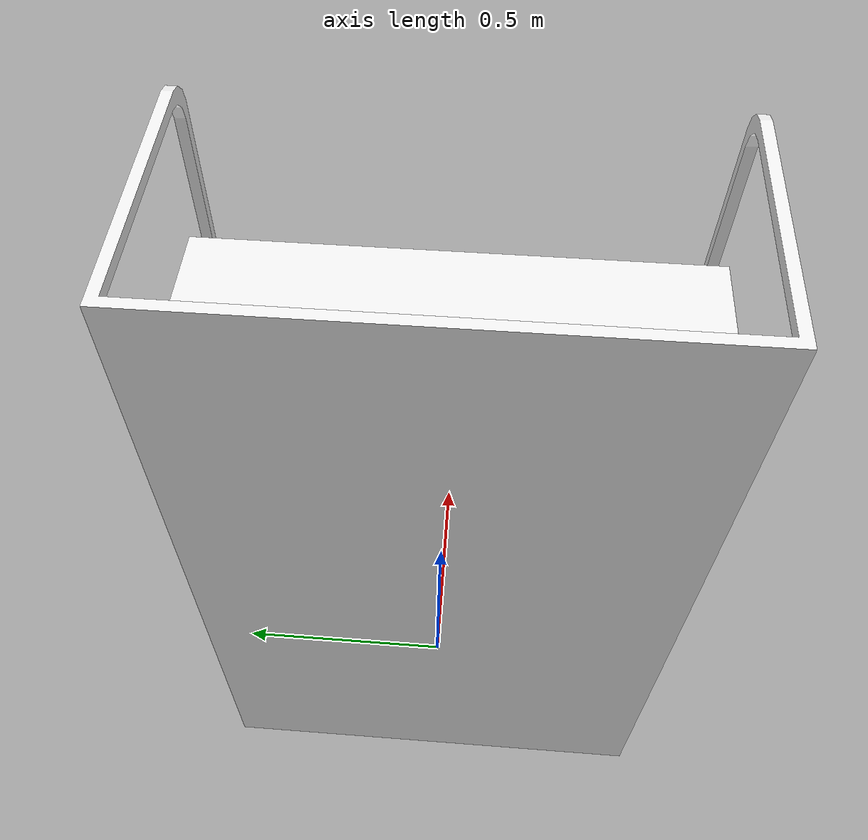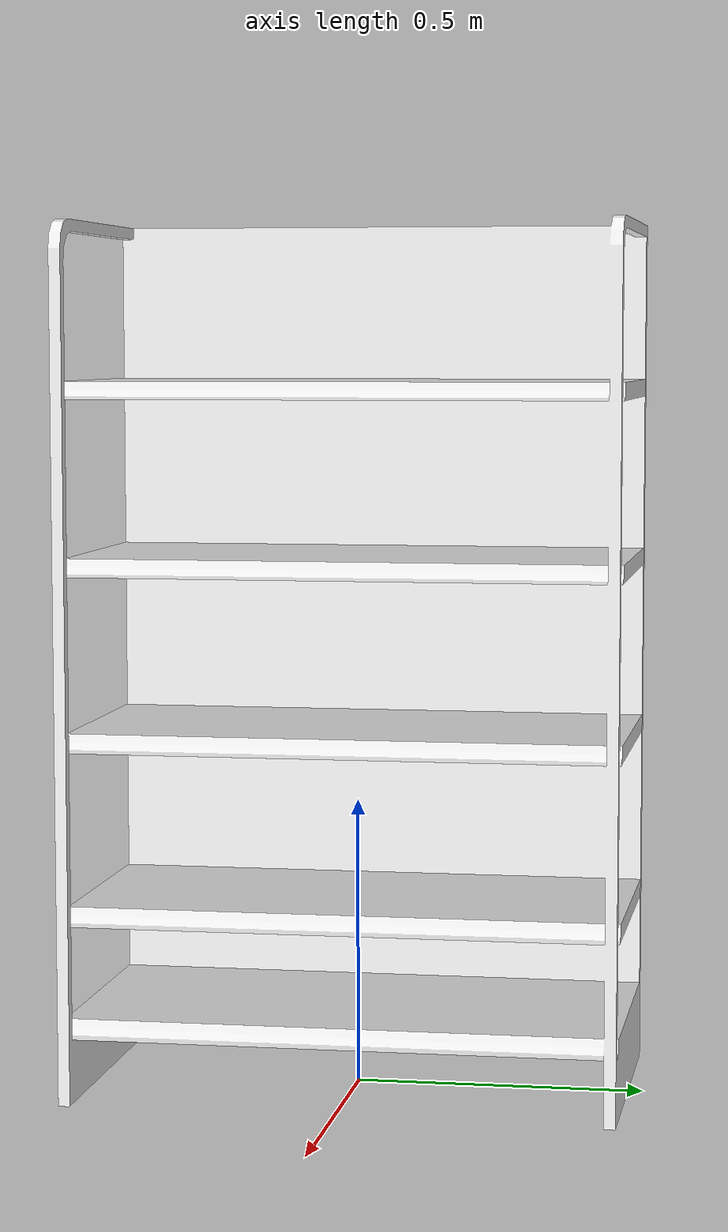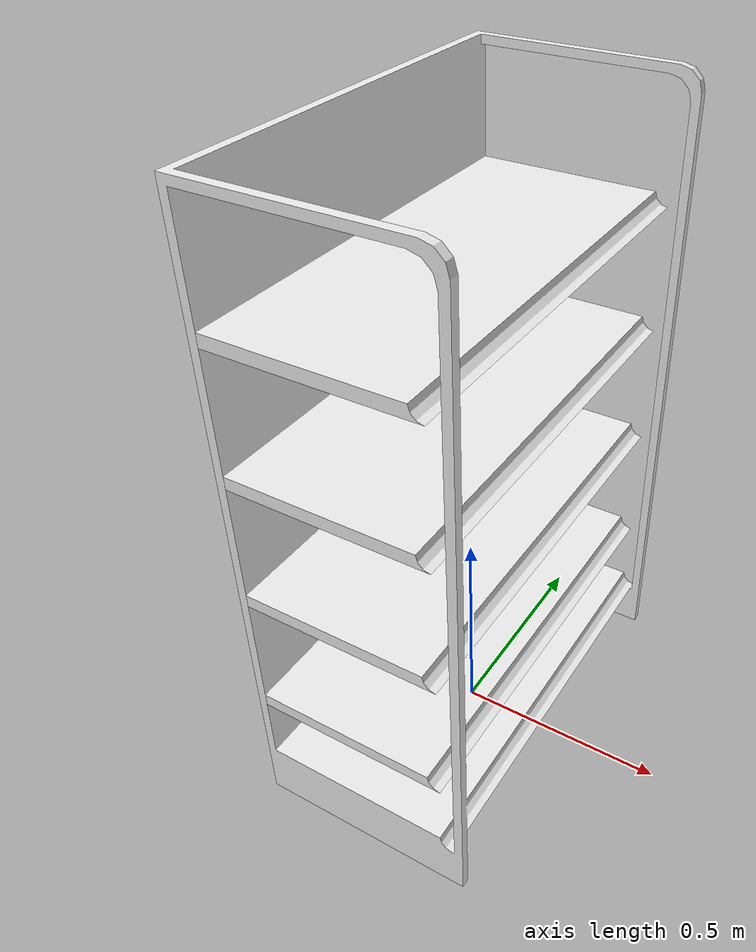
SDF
<?xml version='1.0'?>
<sdf version="1.6">
  <model name="shelf3">
    <static>true</static>
    <link name="shelving_uprights">
      <pose>0 0 0 0 0 0</pose>
      <inertial>
        <pose>-0.156 0 0.545 0 0 0</pose>
        <mass>12.1</mass>
        <inertia>
          <ixx>3.7396</ixx>
          <ixy>0.0</ixy>
          <ixz>0.3568</ixz>
          <iyy>2.9636</iyy>
          <iyz>0.0</iyz>
          <izz>1.3356</izz>
        </inertia>
      </inertial>
      <collision name="collision">
        <geometry>
          <mesh>
            <uri>model://shelf/shelving_uprights.dae</uri>
          </mesh>
        </geometry>
      </collision>
      <visual name="visual">
        <geometry>
          <mesh>
            <uri>model://shelf/shelving_uprights.dae</uri>
          </mesh>
        </geometry>
      </visual>
    </link>

    <link name="shelving_brackets1">
      <pose>0 0 0.3 0 0 0</pose>
      <inertial>
        <pose>-0.027 0 0.015 0 0 0</pose>
        <mass>3.2</mass>
        <inertia>
          <ixx>0.247</ixx>
          <ixy>0.0</ixy>
          <ixz>0.0001</ixz>
          <iyy>0.05</iyy>
          <iyz>0.0</iyz>
          <izz>0.2966</izz>
        </inertia>
      </inertial>
      <collision name="collision">
        <geometry>
          <mesh>
            <uri>model://shelf/shelving_brackets.dae</uri>
          </mesh>
        </geometry>
      </collision>
      <visual name="visual">
        <geometry>
          <mesh>
            <uri>model://shelf/shelving_brackets.dae</uri>
          </mesh>
        </geometry>
      </visual>
    </link>

    <link name="shelving_brackets2">
      <pose>0 0 0.6 0 0 0</pose>
      <inertial>
        <pose>-0.027 0 0.015 0 0 0</pose>
        <mass>3.2</mass>
        <inertia>
          <ixx>0.247</ixx>
          <ixy>0.0</ixy>
          <ixz>0.0001</ixz>
          <iyy>0.05</iyy>
          <iyz>0.0</iyz>
          <izz>0.2966</izz>
        </inertia>
      </inertial>
      <collision name="collision">
        <geometry>
          <mesh>
            <uri>model://shelf/shelving_brackets.dae</uri>
          </mesh>
        </geometry>
      </collision>
      <visual name="visual">
        <geometry>
          <mesh>
            <uri>model://shelf/shelving_brackets.dae</uri>
          </mesh>
        </geometry>
      </visual>
    </link>

    <link name="shelving_brackets3">
      <pose>0 0 0.9 0 0 0</pose>
      <inertial>
        <pose>-0.027 0 0.015 0 0 0</pose>
        <mass>3.2</mass>
        <inertia>
          <ixx>0.247</ixx>
          <ixy>0.0</ixy>
          <ixz>0.0001</ixz>
          <iyy>0.05</iyy>
          <iyz>0.0</iyz>
          <izz>0.2966</izz>
        </inertia>
      </inertial>
      <collision name="collision">
        <geometry>
          <mesh>
            <uri>model://shelf/shelving_brackets.dae</uri>
          </mesh>
        </geometry>
      </collision>
      <visual name="visual">
        <geometry>
          <mesh>
            <uri>model://shelf/shelving_brackets.dae</uri>
          </mesh>
        </geometry>
      </visual>
    </link>

    <link name="shelving_brackets4">
      <pose>0 0 1.2 0 0 0</pose>
      <inertial>
        <pose>-0.027 0 0.015 0 0 0</pose>
        <mass>3.2</mass>
        <inertia>
          <ixx>0.247</ixx>
          <ixy>0.0</ixy>
          <ixz>0.0001</ixz>
          <iyy>0.05</iyy>
          <iyz>0.0</iyz>
          <izz>0.2966</izz>
        </inertia>
      </inertial>
      <collision name="collision">
        <geometry>
          <mesh>
            <uri>model://shelf/shelving_brackets.dae</uri>
          </mesh>
        </geometry>
      </collision>
      <visual name="visual">
        <geometry>
          <mesh>
            <uri>model://shelf/shelving_brackets.dae</uri>
          </mesh>
        </geometry>
      </visual>
    </link>

  </model>
</sdf>
